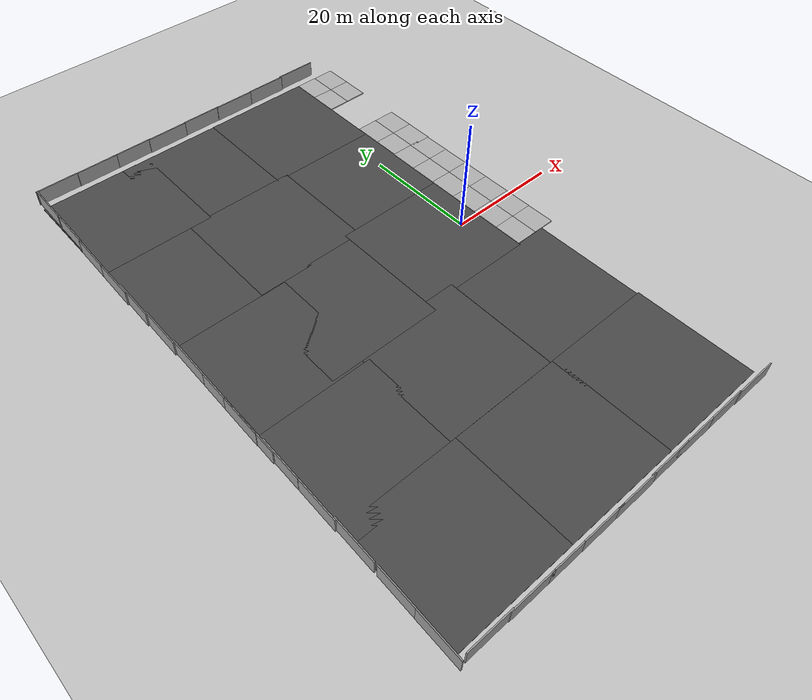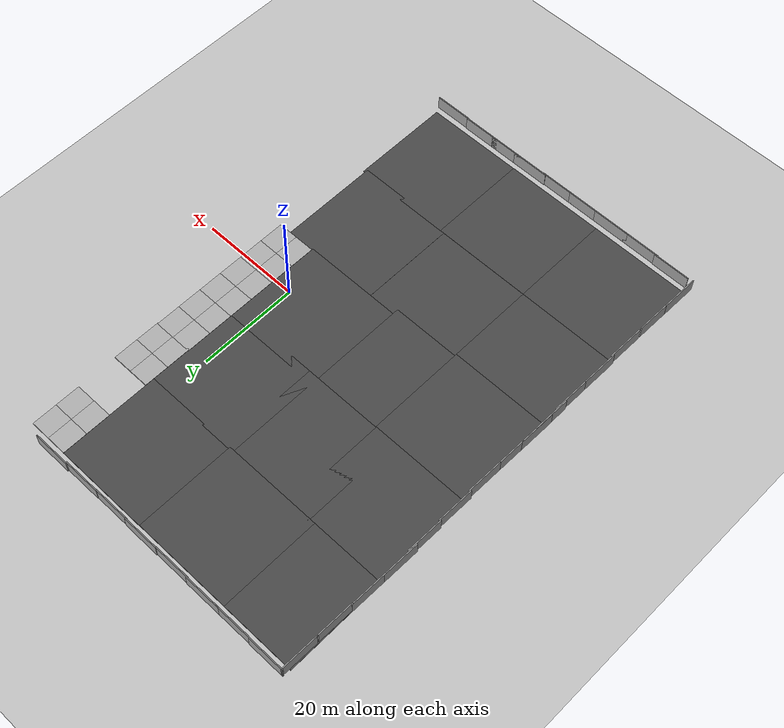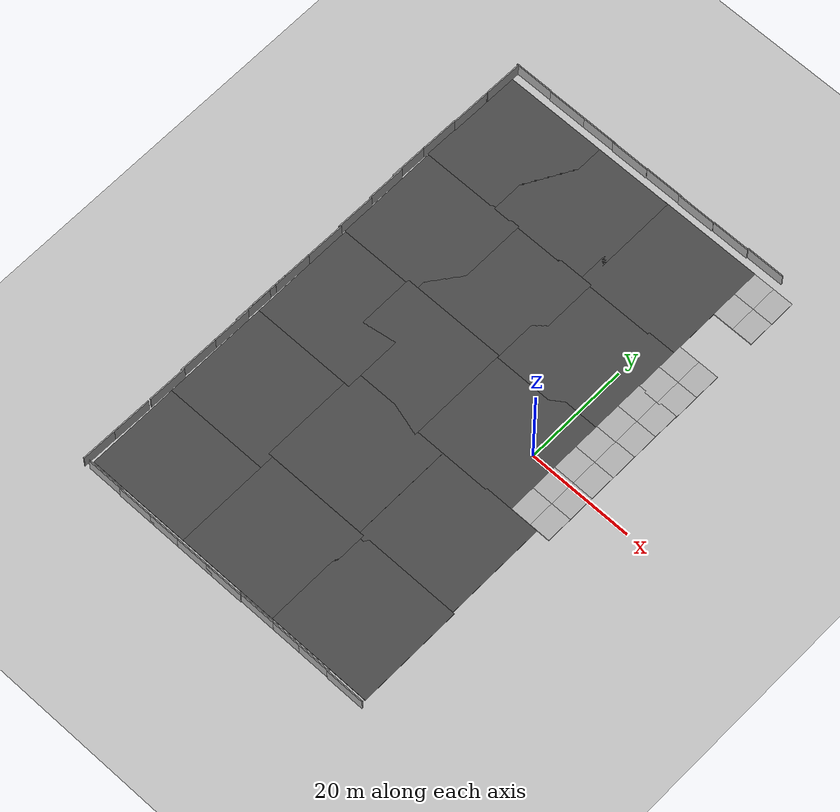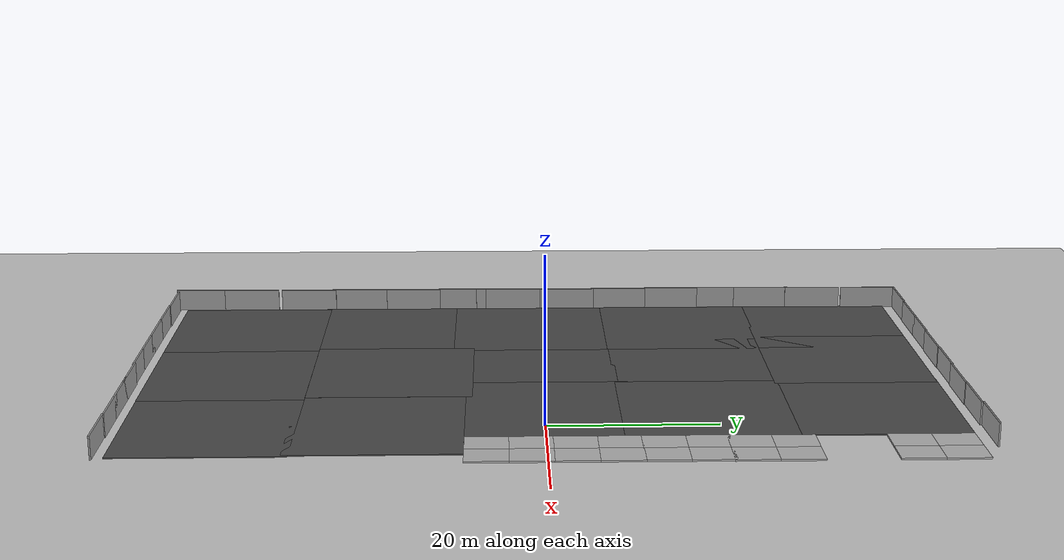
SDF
<sdf version="1.6">
 <world name="default">
  <model name="ground_plane">
   <static>1</static>
   <link name="link">
    <collision name="collision">
     <geometry><plane><normal>0 0 1</normal><size>100 100</size></plane></geometry>
     <surface><friction><ode><mu>100</mu><mu2>50</mu2></ode></friction></surface>
    </collision>
    <visual name="visual">
     <cast_shadows>0</cast_shadows>
     <geometry><plane><normal>0 0 1</normal><size>100 100</size></plane></geometry>
     <material>
      <script><uri>file://media/materials/scripts/gazebo.material</uri><name>Gazebo/Grey</name></script>
     </material>
    </visual>
   </link>
  </model>
  <model name="grey_wall">
   <static>1</static>
   <link name="link">
    <pose>0 0 1.4 0 -0 0</pose>
    <collision name="collision"><geometry><box><size>7.5 0.2 2.8</size></box></geometry></collision>
    <visual name="visual">
     <cast_shadows>0</cast_shadows>
     <geometry><box><size>7.5 0.2 2.8</size></box></geometry>
     <material>
      <script>
       <uri>model://grey_wall/materials/scripts</uri>
       <uri>model://grey_wall/materials/textures</uri>
       <name>vrc/grey_wall</name>
      </script>
     </material>
    </visual>
   </link>
   <pose>-46.1701 49.8815 0 0 -0 0</pose>
  </model>
  <model name="grey_wall_clone">
   <static>1</static>
   <link name="link">
    <pose>0 0 1.4 0 -0 0</pose>
    <collision name="collision"><geometry><box><size>7.5 0.2 2.8</size></box></geometry></collision>
    <visual name="visual">
     <cast_shadows>0</cast_shadows>
     <geometry><box><size>7.5 0.2 2.8</size></box></geometry>
     <material>
      <script>
       <uri>model://grey_wall/materials/scripts</uri>
       <uri>model://grey_wall/materials/textures</uri>
       <name>vrc/grey_wall</name>
      </script>
     </material>
    </visual>
   </link>
   <pose>-38.602 49.801 0 0 -0 0</pose>
  </model>
  <model name="grey_wall_clone_0">
   <static>1</static>
   <link name="link">
    <pose>0 0 1.4 0 -0 0</pose>
    <collision name="collision"><geometry><box><size>7.5 0.2 2.8</size></box></geometry></collision>
    <visual name="visual">
     <cast_shadows>0</cast_shadows>
     <geometry><box><size>7.5 0.2 2.8</size></box></geometry>
     <material>
      <script>
       <uri>model://grey_wall/materials/scripts</uri>
       <uri>model://grey_wall/materials/textures</uri>
       <name>vrc/grey_wall</name>
      </script>
     </material>
    </visual>
   </link>
   <pose>-31.7598 49.801 0 0 -0 0</pose>
  </model>
  <model name="grey_wall_clone_1">
   <static>1</static>
   <link name="link">
    <pose>0 0 1.4 0 -0 0</pose>
    <collision name="collision"><geometry><box><size>7.5 0.2 2.8</size></box></geometry></collision>
    <visual name="visual">
     <cast_shadows>0</cast_shadows>
     <geometry><box><size>7.5 0.2 2.8</size></box></geometry>
     <material>
      <script>
       <uri>model://grey_wall/materials/scripts</uri>
       <uri>model://grey_wall/materials/textures</uri>
       <name>vrc/grey_wall</name>
      </script>
     </material>
    </visual>
   </link>
   <pose>-24.6744 49.7204 0 0 -0 0</pose>
  </model>
  <model name="grey_wall_clone_2">
   <static>1</static>
   <link name="link">
    <pose>0 0 1.4 0 -0 0</pose>
    <collision name="collision"><geometry><box><size>7.5 0.2 2.8</size></box></geometry></collision>
    <visual name="visual">
     <cast_shadows>0</cast_shadows>
     <geometry><box><size>7.5 0.2 2.8</size></box></geometry>
     <material>
      <script>
       <uri>model://grey_wall/materials/scripts</uri>
       <uri>model://grey_wall/materials/textures</uri>
       <name>vrc/grey_wall</name>
      </script>
     </material>
    </visual>
   </link>
   <pose>-17.2675 49.801 0 0 -0 0</pose>
  </model>
  <model name="grey_wall_clone_3">
   <static>1</static>
   <link name="link">
    <pose>0 0 1.4 0 -0 0</pose>
    <collision name="collision"><geometry><box><size>7.5 0.2 2.8</size></box></geometry></collision>
    <visual name="visual">
     <cast_shadows>0</cast_shadows>
     <geometry><box><size>7.5 0.2 2.8</size></box></geometry>
     <material>
      <script>
       <uri>model://grey_wall/materials/scripts</uri>
       <uri>model://grey_wall/materials/textures</uri>
       <name>vrc/grey_wall</name>
      </script>
     </material>
    </visual>
   </link>
   <pose>-10.1824 49.7204 0 0 -0 0</pose>
  </model>
  <model name="grey_wall_clone_4">
   <static>1</static>
   <link name="link">
    <pose>0 0 1.4 0 -0 0</pose>
    <collision name="collision"><geometry><box><size>7.5 0.2 2.8</size></box></geometry></collision>
    <visual name="visual">
     <cast_shadows>0</cast_shadows>
     <geometry><box><size>7.5 0.2 2.8</size></box></geometry>
     <material>
      <script>
       <uri>model://grey_wall/materials/scripts</uri>
       <uri>model://grey_wall/materials/textures</uri>
       <name>vrc/grey_wall</name>
      </script>
     </material>
    </visual>
   </link>
   <pose>-2.85569 49.801 0 0 -0 0</pose>
  </model>
  <model name="grey_wall_clone_5">
   <static>1</static>
   <link name="link">
    <pose>0 0 1.4 0 -0 0</pose>
    <collision name="collision"><geometry><box><size>7.5 0.2 2.8</size></box></geometry></collision>
    <visual name="visual">
     <cast_shadows>0</cast_shadows>
     <geometry><box><size>7.5 0.2 2.8</size></box></geometry>
     <material>
      <script>
       <uri>model://grey_wall/materials/scripts</uri>
       <uri>model://grey_wall/materials/textures</uri>
       <name>vrc/grey_wall</name>
      </script>
     </material>
    </visual>
   </link>
   <pose>4.47068 50 0 0 -0 0</pose>
  </model>
  <model name="grey_wall_clone_12">
   <static>1</static>
   <link name="link">
    <pose>0 0 1.4 0 -0 0</pose>
    <collision name="collision"><geometry><box><size>7.5 0.2 2.8</size></box></geometry></collision>
    <visual name="visual">
     <cast_shadows>0</cast_shadows>
     <geometry><box><size>7.5 0.2 2.8</size></box></geometry>
     <material>
      <script>
       <uri>model://grey_wall/materials/scripts</uri>
       <uri>model://grey_wall/materials/textures</uri>
       <name>vrc/grey_wall</name>
      </script>
     </material>
    </visual>
   </link>
   <pose>-45.5845 -49.5987 0 0 -0 0</pose>
  </model>
  <model name="grey_wall_clone_13">
   <static>1</static>
   <link name="link">
    <pose>0 0 1.4 0 -0 0</pose>
    <collision name="collision"><geometry><box><size>7.5 0.2 2.8</size></box></geometry></collision>
    <visual name="visual">
     <cast_shadows>0</cast_shadows>
     <geometry><box><size>7.5 0.2 2.8</size></box></geometry>
     <material>
      <script>
       <uri>model://grey_wall/materials/scripts</uri>
       <uri>model://grey_wall/materials/textures</uri>
       <name>vrc/grey_wall</name>
      </script>
     </material>
    </visual>
   </link>
   <pose>-38.6647 -49.7032 0 0 -0 0</pose>
  </model>
  <model name="grey_wall_clone_14">
   <static>1</static>
   <link name="link">
    <pose>0 0 1.4 0 -0 0</pose>
    <collision name="collision"><geometry><box><size>7.5 0.2 2.8</size></box></geometry></collision>
    <visual name="visual">
     <cast_shadows>0</cast_shadows>
     <geometry><box><size>7.5 0.2 2.8</size></box></geometry>
     <material>
      <script>
       <uri>model://grey_wall/materials/scripts</uri>
       <uri>model://grey_wall/materials/textures</uri>
       <name>vrc/grey_wall</name>
      </script>
     </material>
    </visual>
   </link>
   <pose>-31.8514 -49.7032 0 0 -0 0</pose>
  </model>
  <model name="grey_wall_clone_15">
   <static>1</static>
   <link name="link">
    <pose>0 0 1.4 0 -0 0</pose>
    <collision name="collision"><geometry><box><size>7.5 0.2 2.8</size></box></geometry></collision>
    <visual name="visual">
     <cast_shadows>0</cast_shadows>
     <geometry><box><size>7.5 0.2 2.8</size></box></geometry>
     <material>
      <script>
       <uri>model://grey_wall/materials/scripts</uri>
       <uri>model://grey_wall/materials/textures</uri>
       <name>vrc/grey_wall</name>
      </script>
     </material>
    </visual>
   </link>
   <pose>-25.8942 -49.7032 0 0 -0 0</pose>
  </model>
  <model name="grey_wall_clone_16">
   <static>1</static>
   <link name="link">
    <pose>0 0 1.4 0 -0 0</pose>
    <collision name="collision"><geometry><box><size>7.5 0.2 2.8</size></box></geometry></collision>
    <visual name="visual">
     <cast_shadows>0</cast_shadows>
     <geometry><box><size>7.5 0.2 2.8</size></box></geometry>
     <material>
      <script>
       <uri>model://grey_wall/materials/scripts</uri>
       <uri>model://grey_wall/materials/textures</uri>
       <name>vrc/grey_wall</name>
      </script>
     </material>
    </visual>
   </link>
   <pose>-19.5089 -49.7032 0 0 -0 0</pose>
  </model>
  <model name="grey_wall_clone_17">
   <static>1</static>
   <link name="link">
    <pose>0 0 1.4 0 -0 0</pose>
    <collision name="collision"><geometry><box><size>7.5 0.2 2.8</size></box></geometry></collision>
    <visual name="visual">
     <cast_shadows>0</cast_shadows>
     <geometry><box><size>7.5 0.2 2.8</size></box></geometry>
     <material>
      <script>
       <uri>model://grey_wall/materials/scripts</uri>
       <uri>model://grey_wall/materials/textures</uri>
       <name>vrc/grey_wall</name>
      </script>
     </material>
    </visual>
   </link>
   <pose>-12.5891 -49.5987 0 0 -0 0</pose>
  </model>
  <model name="grey_wall_clone_18">
   <static>1</static>
   <link name="link">
    <pose>0 0 1.4 0 -0 0</pose>
    <collision name="collision"><geometry><box><size>7.5 0.2 2.8</size></box></geometry></collision>
    <visual name="visual">
     <cast_shadows>0</cast_shadows>
     <geometry><box><size>7.5 0.2 2.8</size></box></geometry>
     <material>
      <script>
       <uri>model://grey_wall/materials/scripts</uri>
       <uri>model://grey_wall/materials/textures</uri>
       <name>vrc/grey_wall</name>
      </script>
     </material>
    </visual>
   </link>
   <pose>-7.05603 -49.5987 0 0 -0 0</pose>
  </model>
  <model name="grey_wall_clone_19">
   <static>1</static>
   <link name="link">
    <pose>0 0 1.4 0 -0 0</pose>
    <collision name="collision"><geometry><box><size>7.5 0.2 2.8</size></box></geometry></collision>
    <visual name="visual">
     <cast_shadows>0</cast_shadows>
     <geometry><box><size>7.5 0.2 2.8</size></box></geometry>
     <material>
      <script>
       <uri>model://grey_wall/materials/scripts</uri>
       <uri>model://grey_wall/materials/textures</uri>
       <name>vrc/grey_wall</name>
      </script>
     </material>
    </visual>
   </link>
   <pose>-0.670774 -49.5987 0 0 -0 0</pose>
  </model>
  <model name="grey_wall_clone_20">
   <static>1</static>
   <link name="link">
    <pose>0 0 1.4 0 -0 0</pose>
    <collision name="collision"><geometry><box><size>7.5 0.2 2.8</size></box></geometry></collision>
    <visual name="visual">
     <cast_shadows>0</cast_shadows>
     <geometry><box><size>7.5 0.2 2.8</size></box></geometry>
     <material>
      <script>
       <uri>model://grey_wall/materials/scripts</uri>
       <uri>model://grey_wall/materials/textures</uri>
       <name>vrc/grey_wall</name>
      </script>
     </material>
    </visual>
   </link>
   <pose>6.56856 -49.7032 0 0 -0 0</pose>
  </model>
  <model name="grey_wall_clone_27">
   <static>1</static>
   <link name="link">
    <pose>0 0 1.4 0 -0 0</pose>
    <collision name="collision"><geometry><box><size>7.5 0.2 2.8</size></box></geometry></collision>
    <visual name="visual">
     <cast_shadows>0</cast_shadows>
     <geometry><box><size>7.5 0.2 2.8</size></box></geometry>
     <material>
      <script>
       <uri>model://grey_wall/materials/scripts</uri>
       <uri>model://grey_wall/materials/textures</uri>
       <name>vrc/grey_wall</name>
      </script>
     </material>
    </visual>
   </link>
   <pose>-49.7193 46.2533 0 0 0 -1.5859</pose>
  </model>
  <model name="grey_wall_clone_27_clone">
   <static>1</static>
   <link name="link">
    <pose>0 0 1.4 0 -0 0</pose>
    <collision name="collision"><geometry><box><size>7.5 0.2 2.8</size></box></geometry></collision>
    <visual name="visual">
     <cast_shadows>0</cast_shadows>
     <geometry><box><size>7.5 0.2 2.8</size></box></geometry>
     <material>
      <script>
       <uri>model://grey_wall/materials/scripts</uri>
       <uri>model://grey_wall/materials/textures</uri>
       <name>vrc/grey_wall</name>
      </script>
     </material>
    </visual>
   </link>
   <pose>-49.815 38.4554 0 0 0 -1.5859</pose>
  </model>
  <model name="grey_wall_clone_27_clone_0">
   <static>1</static>
   <link name="link">
    <pose>0 0 1.4 0 -0 0</pose>
    <collision name="collision"><geometry><box><size>7.5 0.2 2.8</size></box></geometry></collision>
    <visual name="visual">
     <cast_shadows>0</cast_shadows>
     <geometry><box><size>7.5 0.2 2.8</size></box></geometry>
     <material>
      <script>
       <uri>model://grey_wall/materials/scripts</uri>
       <uri>model://grey_wall/materials/textures</uri>
       <name>vrc/grey_wall</name>
      </script>
     </material>
    </visual>
   </link>
   <pose>-50.0316 31.29 0 0 0 -1.5859</pose>
  </model>
  <model name="grey_wall_clone_27_clone_1">
   <static>1</static>
   <link name="link">
    <pose>0 0 1.4 0 -0 0</pose>
    <collision name="collision"><geometry><box><size>7.5 0.2 2.8</size></box></geometry></collision>
    <visual name="visual">
     <cast_shadows>0</cast_shadows>
     <geometry><box><size>7.5 0.2 2.8</size></box></geometry>
     <material>
      <script>
       <uri>model://grey_wall/materials/scripts</uri>
       <uri>model://grey_wall/materials/textures</uri>
       <name>vrc/grey_wall</name>
      </script>
     </material>
    </visual>
   </link>
   <pose>-50.152 24.2369 0 0 0 -1.5859</pose>
  </model>
  <model name="grey_wall_clone_27_clone_2">
   <static>1</static>
   <link name="link">
    <pose>0 0 1.4 0 -0 0</pose>
    <collision name="collision"><geometry><box><size>7.5 0.2 2.8</size></box></geometry></collision>
    <visual name="visual">
     <cast_shadows>0</cast_shadows>
     <geometry><box><size>7.5 0.2 2.8</size></box></geometry>
     <material>
      <script>
       <uri>model://grey_wall/materials/scripts</uri>
       <uri>model://grey_wall/materials/textures</uri>
       <name>vrc/grey_wall</name>
      </script>
     </material>
    </visual>
   </link>
   <pose>-50.0316 18.6161 0 0 0 -1.5859</pose>
  </model>
  <model name="grey_wall_clone_27_clone_3">
   <static>1</static>
   <link name="link">
    <pose>0 0 1.4 0 -0 0</pose>
    <collision name="collision"><geometry><box><size>7.5 0.2 2.8</size></box></geometry></collision>
    <visual name="visual">
     <cast_shadows>0</cast_shadows>
     <geometry><box><size>7.5 0.2 2.8</size></box></geometry>
     <material>
      <script>
       <uri>model://grey_wall/materials/scripts</uri>
       <uri>model://grey_wall/materials/textures</uri>
       <name>vrc/grey_wall</name>
      </script>
     </material>
    </visual>
   </link>
   <pose>-49.9353 11.3383 0 0 0 -1.5859</pose>
  </model>
  <model name="grey_wall_clone_27_clone_4">
   <static>1</static>
   <link name="link">
    <pose>0 0 1.4 0 -0 0</pose>
    <collision name="collision"><geometry><box><size>7.5 0.2 2.8</size></box></geometry></collision>
    <visual name="visual">
     <cast_shadows>0</cast_shadows>
     <geometry><box><size>7.5 0.2 2.8</size></box></geometry>
     <material>
      <script>
       <uri>model://grey_wall/materials/scripts</uri>
       <uri>model://grey_wall/materials/textures</uri>
       <name>vrc/grey_wall</name>
      </script>
     </material>
    </visual>
   </link>
   <pose>-49.815 4.17291 0 0 0 -1.5859</pose>
  </model>
  <model name="grey_wall_clone_27_clone_5">
   <static>1</static>
   <link name="link">
    <pose>0 0 1.4 0 -0 0</pose>
    <collision name="collision"><geometry><box><size>7.5 0.2 2.8</size></box></geometry></collision>
    <visual name="visual">
     <cast_shadows>0</cast_shadows>
     <geometry><box><size>7.5 0.2 2.8</size></box></geometry>
     <material>
      <script>
       <uri>model://grey_wall/materials/scripts</uri>
       <uri>model://grey_wall/materials/textures</uri>
       <name>vrc/grey_wall</name>
      </script>
     </material>
    </visual>
   </link>
   <pose>-49.9353 -3.32151 0 0 0 -1.5859</pose>
  </model>
  <model name="grey_wall_clone_27_clone_6">
   <static>1</static>
   <link name="link">
    <pose>0 0 1.4 0 -0 0</pose>
    <collision name="collision"><geometry><box><size>7.5 0.2 2.8</size></box></geometry></collision>
    <visual name="visual">
     <cast_shadows>0</cast_shadows>
     <geometry><box><size>7.5 0.2 2.8</size></box></geometry>
     <material>
      <script>
       <uri>model://grey_wall/materials/scripts</uri>
       <uri>model://grey_wall/materials/textures</uri>
       <name>vrc/grey_wall</name>
      </script>
     </material>
    </visual>
   </link>
   <pose>-50.0316 -8.50501 0 0 0 -1.5859</pose>
  </model>
  <model name="grey_wall_clone_27_clone_7">
   <static>1</static>
   <link name="link">
    <pose>0 0 1.4 0 -0 0</pose>
    <collision name="collision"><geometry><box><size>7.5 0.2 2.8</size></box></geometry></collision>
    <visual name="visual">
     <cast_shadows>0</cast_shadows>
     <geometry><box><size>7.5 0.2 2.8</size></box></geometry>
     <material>
      <script>
       <uri>model://grey_wall/materials/scripts</uri>
       <uri>model://grey_wall/materials/textures</uri>
       <name>vrc/grey_wall</name>
      </script>
     </material>
    </visual>
   </link>
   <pose>-50.0316 -12.1439 0 0 0 -1.5859</pose>
  </model>
  <model name="grey_wall_clone_27_clone_8">
   <static>1</static>
   <link name="link">
    <pose>0 0 1.4 0 -0 0</pose>
    <collision name="collision"><geometry><box><size>7.5 0.2 2.8</size></box></geometry></collision>
    <visual name="visual">
     <cast_shadows>0</cast_shadows>
     <geometry><box><size>7.5 0.2 2.8</size></box></geometry>
     <material>
      <script>
       <uri>model://grey_wall/materials/scripts</uri>
       <uri>model://grey_wall/materials/textures</uri>
       <name>vrc/grey_wall</name>
      </script>
     </material>
    </visual>
   </link>
   <pose>-49.9353 -17.2151 0 0 0 -1.5859</pose>
  </model>
  <model name="grey_wall_clone_27_clone_9">
   <static>1</static>
   <link name="link">
    <pose>0 0 1.4 0 -0 0</pose>
    <collision name="collision"><geometry><box><size>7.5 0.2 2.8</size></box></geometry></collision>
    <visual name="visual">
     <cast_shadows>0</cast_shadows>
     <geometry><box><size>7.5 0.2 2.8</size></box></geometry>
     <material>
      <script>
       <uri>model://grey_wall/materials/scripts</uri>
       <uri>model://grey_wall/materials/textures</uri>
       <name>vrc/grey_wall</name>
      </script>
     </material>
    </visual>
   </link>
   <pose>-50.0316 -24.6011 0 0 0 -1.5859</pose>
  </model>
  <model name="grey_wall_clone_27_clone_10">
   <static>1</static>
   <link name="link">
    <pose>0 0 1.4 0 -0 0</pose>
    <collision name="collision"><geometry><box><size>7.5 0.2 2.8</size></box></geometry></collision>
    <visual name="visual">
     <cast_shadows>0</cast_shadows>
     <geometry><box><size>7.5 0.2 2.8</size></box></geometry>
     <material>
      <script>
       <uri>model://grey_wall/materials/scripts</uri>
       <uri>model://grey_wall/materials/textures</uri>
       <name>vrc/grey_wall</name>
      </script>
     </material>
    </visual>
   </link>
   <pose>-49.9353 -31.6542 0 0 0 -1.5859</pose>
  </model>
  <model name="grey_wall_clone_27_clone_11">
   <static>1</static>
   <link name="link">
    <pose>0 0 1.4 0 -0 0</pose>
    <collision name="collision"><geometry><box><size>7.5 0.2 2.8</size></box></geometry></collision>
    <visual name="visual">
     <cast_shadows>0</cast_shadows>
     <geometry><box><size>7.5 0.2 2.8</size></box></geometry>
     <material>
      <script>
       <uri>model://grey_wall/materials/scripts</uri>
       <uri>model://grey_wall/materials/textures</uri>
       <name>vrc/grey_wall</name>
      </script>
     </material>
    </visual>
   </link>
   <pose>-50.0316 -39.598 0 0 0 -1.5859</pose>
  </model>
  <model name="grey_wall_clone_27_clone_12">
   <static>1</static>
   <link name="link">
    <pose>0 0 1.4 0 -0 0</pose>
    <collision name="collision"><geometry><box><size>7.5 0.2 2.8</size></box></geometry></collision>
    <visual name="visual">
     <cast_shadows>0</cast_shadows>
     <geometry><box><size>7.5 0.2 2.8</size></box></geometry>
     <material>
      <script>
       <uri>model://grey_wall/materials/scripts</uri>
       <uri>model://grey_wall/materials/textures</uri>
       <name>vrc/grey_wall</name>
      </script>
     </material>
    </visual>
   </link>
   <pose>-50.152 -46.2098 0 0 0 -1.5859</pose>
  </model>
  <model name="asphalt_plane_clone">
   <static>1</static>
   <link name="link">
    <collision name="collision"><geometry><box><size>20 20 0.1</size></box></geometry></collision>
    <visual name="visual">
     <cast_shadows>0</cast_shadows>
     <geometry><box><size>20 20 0.1</size></box></geometry>
     <material>
      <script>
       <uri>model://asphalt_plane/materials/scripts</uri>
       <uri>model://asphalt_plane/materials/textures</uri>
       <name>vrc/asphalt</name>
      </script>
     </material>
    </visual>
   </link>
   <pose>-6.06602 38.4755 0 0 -0 0</pose>
  </model>
  <model name="asphalt_plane_clone_clone">
   <static>1</static>
   <link name="link">
    <collision name="collision"><geometry><box><size>20 20 0.1</size></box></geometry></collision>
    <visual name="visual">
     <cast_shadows>0</cast_shadows>
     <geometry><box><size>20 20 0.1</size></box></geometry>
     <material>
      <script>
       <uri>model://asphalt_plane/materials/scripts</uri>
       <uri>model://asphalt_plane/materials/textures</uri>
       <name>vrc/asphalt</name>
      </script>
     </material>
    </visual>
   </link>
   <pose>-25.029 38.4314 0 0 -0 0</pose>
  </model>
  <model name="asphalt_plane_clone_clone_0">
   <static>1</static>
   <link name="link">
    <collision name="collision"><geometry><box><size>20 20 0.1</size></box></geometry></collision>
    <visual name="visual">
     <cast_shadows>0</cast_shadows>
     <geometry><box><size>20 20 0.1</size></box></geometry>
     <material>
      <script>
       <uri>model://asphalt_plane/materials/scripts</uri>
       <uri>model://asphalt_plane/materials/textures</uri>
       <name>vrc/asphalt</name>
      </script>
     </material>
    </visual>
   </link>
   <pose>-40.0484 38.4332 0 0 -0 0</pose>
  </model>
  <model name="asphalt_plane_clone_clone_1">
   <static>1</static>
   <link name="link">
    <collision name="collision"><geometry><box><size>20 20 0.1</size></box></geometry></collision>
    <visual name="visual">
     <cast_shadows>0</cast_shadows>
     <geometry><box><size>20 20 0.1</size></box></geometry>
     <material>
      <script>
       <uri>model://asphalt_plane/materials/scripts</uri>
       <uri>model://asphalt_plane/materials/textures</uri>
       <name>vrc/asphalt</name>
      </script>
     </material>
    </visual>
   </link>
   <pose>-6.09725 0.452173 0 0 -0 0</pose>
  </model>
  <model name="asphalt_plane_clone_clone_2">
   <static>1</static>
   <link name="link">
    <collision name="collision"><geometry><box><size>20 20 0.1</size></box></geometry></collision>
    <visual name="visual">
     <cast_shadows>0</cast_shadows>
     <geometry><box><size>20 20 0.1</size></box></geometry>
     <material>
      <script>
       <uri>model://asphalt_plane/materials/scripts</uri>
       <uri>model://asphalt_plane/materials/textures</uri>
       <name>vrc/asphalt</name>
      </script>
     </material>
    </visual>
   </link>
   <pose>-6.0256 18.8451 0 0 -0 0</pose>
  </model>
  <model name="asphalt_plane_clone_clone_3">
   <static>1</static>
   <link name="link">
    <collision name="collision"><geometry><box><size>20 20 0.1</size></box></geometry></collision>
    <visual name="visual">
     <cast_shadows>0</cast_shadows>
     <geometry><box><size>20 20 0.1</size></box></geometry>
     <material>
      <script>
       <uri>model://asphalt_plane/materials/scripts</uri>
       <uri>model://asphalt_plane/materials/textures</uri>
       <name>vrc/asphalt</name>
      </script>
     </material>
    </visual>
   </link>
   <pose>-23.9914 18.848 0 0 -0 0</pose>
  </model>
  <model name="asphalt_plane_clone_clone_4">
   <static>1</static>
   <link name="link">
    <collision name="collision"><geometry><box><size>20 20 0.1</size></box></geometry></collision>
    <visual name="visual">
     <cast_shadows>0</cast_shadows>
     <geometry><box><size>20 20 0.1</size></box></geometry>
     <material>
      <script>
       <uri>model://asphalt_plane/materials/scripts</uri>
       <uri>model://asphalt_plane/materials/textures</uri>
       <name>vrc/asphalt</name>
      </script>
     </material>
    </visual>
   </link>
   <pose>-39.8056 18.7324 0 0 -0 0</pose>
  </model>
  <model name="asphalt_plane_clone_clone_5">
   <static>1</static>
   <link name="link">
    <collision name="collision"><geometry><box><size>20 20 0.1</size></box></geometry></collision>
    <visual name="visual">
     <cast_shadows>0</cast_shadows>
     <geometry><box><size>20 20 0.1</size></box></geometry>
     <material>
      <script>
       <uri>model://asphalt_plane/materials/scripts</uri>
       <uri>model://asphalt_plane/materials/textures</uri>
       <name>vrc/asphalt</name>
      </script>
     </material>
    </visual>
   </link>
   <pose>-39.6898 -1.25437 0 0 -0 0</pose>
  </model>
  <model name="asphalt_plane_clone_clone_6">
   <static>1</static>
   <link name="link">
    <collision name="collision"><geometry><box><size>20 20 0.1</size></box></geometry></collision>
    <visual name="visual">
     <cast_shadows>0</cast_shadows>
     <geometry><box><size>20 20 0.1</size></box></geometry>
     <material>
      <script>
       <uri>model://asphalt_plane/materials/scripts</uri>
       <uri>model://asphalt_plane/materials/textures</uri>
       <name>vrc/asphalt</name>
      </script>
     </material>
    </visual>
   </link>
   <pose>-26.0836 -0.718716 0 0 -0 0</pose>
  </model>
  <model name="asphalt_plane_clone_clone_7">
   <static>1</static>
   <link name="link">
    <collision name="collision"><geometry><box><size>20 20 0.1</size></box></geometry></collision>
    <visual name="visual">
     <cast_shadows>0</cast_shadows>
     <geometry><box><size>20 20 0.1</size></box></geometry>
     <material>
      <script>
       <uri>model://asphalt_plane/materials/scripts</uri>
       <uri>model://asphalt_plane/materials/textures</uri>
       <name>vrc/asphalt</name>
      </script>
     </material>
    </visual>
   </link>
   <pose>-39.6936 -21.1224 0 0 -0 0</pose>
  </model>
  <model name="asphalt_plane_clone_clone_8">
   <static>1</static>
   <link name="link">
    <collision name="collision"><geometry><box><size>20 20 0.1</size></box></geometry></collision>
    <visual name="visual">
     <cast_shadows>0</cast_shadows>
     <geometry><box><size>20 20 0.1</size></box></geometry>
     <material>
      <script>
       <uri>model://asphalt_plane/materials/scripts</uri>
       <uri>model://asphalt_plane/materials/textures</uri>
       <name>vrc/asphalt</name>
      </script>
     </material>
    </visual>
   </link>
   <pose>-39.6709 -38.5159 0 0 -0 0</pose>
  </model>
  <model name="asphalt_plane_clone_clone_9">
   <static>1</static>
   <link name="link">
    <collision name="collision"><geometry><box><size>20 20 0.1</size></box></geometry></collision>
    <visual name="visual">
     <cast_shadows>0</cast_shadows>
     <geometry><box><size>20 20 0.1</size></box></geometry>
     <material>
      <script>
       <uri>model://asphalt_plane/materials/scripts</uri>
       <uri>model://asphalt_plane/materials/textures</uri>
       <name>vrc/asphalt</name>
      </script>
     </material>
    </visual>
   </link>
   <pose>-19.7984 -38.5079 0 0 -0 0</pose>
  </model>
  <model name="asphalt_plane_clone_clone_10">
   <static>1</static>
   <link name="link">
    <collision name="collision"><geometry><box><size>20 20 0.1</size></box></geometry></collision>
    <visual name="visual">
     <cast_shadows>0</cast_shadows>
     <geometry><box><size>20 20 0.1</size></box></geometry>
     <material>
      <script>
       <uri>model://asphalt_plane/materials/scripts</uri>
       <uri>model://asphalt_plane/materials/textures</uri>
       <name>vrc/asphalt</name>
      </script>
     </material>
    </visual>
   </link>
   <pose>-20.6391 -18.4991 0 0 -0 0</pose>
  </model>
  <model name="asphalt_plane_clone_clone_11">
   <static>1</static>
   <link name="link">
    <collision name="collision"><geometry><box><size>20 20 0.1</size></box></geometry></collision>
    <visual name="visual">
     <cast_shadows>0</cast_shadows>
     <geometry><box><size>20 20 0.1</size></box></geometry>
     <material>
      <script>
       <uri>model://asphalt_plane/materials/scripts</uri>
       <uri>model://asphalt_plane/materials/textures</uri>
       <name>vrc/asphalt</name>
      </script>
     </material>
    </visual>
   </link>
   <pose>-0.630927 -19.2644 0 0 -0 0</pose>
  </model>
  <model name="asphalt_plane_clone_clone_16">
   <static>1</static>
   <link name="link">
    <collision name="collision"><geometry><box><size>20 20 0.1</size></box></geometry></collision>
    <visual name="visual">
     <cast_shadows>0</cast_shadows>
     <geometry><box><size>20 20 0.1</size></box></geometry>
     <material>
      <script>
       <uri>model://asphalt_plane/materials/scripts</uri>
       <uri>model://asphalt_plane/materials/textures</uri>
       <name>vrc/asphalt</name>
      </script>
     </material>
    </visual>
   </link>
   <pose>-0.297876 -38.4705 0 0 -0 0</pose>
  </model>
  <model name="mud_box_clone_4_clone_1">
   <static>1</static>
   <link name="link">
    <collision name="collision"><geometry><box><size>8 10 0.2</size></box></geometry></collision>
    <visual name="visual_1">
     <pose>-2 2.5 0 0 -0 0</pose>
     <cast_shadows>0</cast_shadows>
     <geometry><box><size>4 5 0.2</size></box></geometry>
     <material>
      <script>
       <uri>model://mud_box/materials/scripts</uri>
       <uri>model://mud_box/materials/textures</uri>
       <name>vrc/mud</name>
      </script>
     </material>
    </visual>
    <visual name="visual_2">
     <pose>2 2.5 0 0 -0 0</pose>
     <cast_shadows>0</cast_shadows>
     <geometry><box><size>4 5 0.2</size></box></geometry>
     <material>
      <script>
       <uri>model://mud_box/materials/scripts</uri>
       <uri>model://mud_box/materials/textures</uri>
       <name>vrc/mud</name>
      </script>
     </material>
    </visual>
    <visual name="visual_3">
     <pose>2 -2.5 0 0 -0 0</pose>
     <cast_shadows>0</cast_shadows>
     <geometry><box><size>4 5 0.2</size></box></geometry>
     <material>
      <script>
       <uri>model://mud_box/materials/scripts</uri>
       <uri>model://mud_box/materials/textures</uri>
       <name>vrc/mud</name>
      </script>
     </material>
    </visual>
    <visual name="visual_4">
     <pose>-2 -2.5 0 0 -0 0</pose>
     <cast_shadows>0</cast_shadows>
     <geometry><box><size>4 5 0.2</size></box></geometry>
     <material>
      <script>
       <uri>model://mud_box/materials/scripts</uri>
       <uri>model://mud_box/materials/textures</uri>
       <name>vrc/mud</name>
      </script>
     </material>
    </visual>
   </link>
   <pose>7.83865 15.64 0 0 -0 0</pose>
  </model>
  <model name="mud_box_clone_4_clone_5">
   <static>1</static>
   <link name="link">
    <collision name="collision"><geometry><box><size>8 10 0.2</size></box></geometry></collision>
    <visual name="visual_1">
     <pose>-2 2.5 0 0 -0 0</pose>
     <cast_shadows>0</cast_shadows>
     <geometry><box><size>4 5 0.2</size></box></geometry>
     <material>
      <script>
       <uri>model://mud_box/materials/scripts</uri>
       <uri>model://mud_box/materials/textures</uri>
       <name>vrc/mud</name>
      </script>
     </material>
    </visual>
    <visual name="visual_2">
     <pose>2 2.5 0 0 -0 0</pose>
     <cast_shadows>0</cast_shadows>
     <geometry><box><size>4 5 0.2</size></box></geometry>
     <material>
      <script>
       <uri>model://mud_box/materials/scripts</uri>
       <uri>model://mud_box/materials/textures</uri>
       <name>vrc/mud</name>
      </script>
     </material>
    </visual>
    <visual name="visual_3">
     <pose>2 -2.5 0 0 -0 0</pose>
     <cast_shadows>0</cast_shadows>
     <geometry><box><size>4 5 0.2</size></box></geometry>
     <material>
      <script>
       <uri>model://mud_box/materials/scripts</uri>
       <uri>model://mud_box/materials/textures</uri>
       <name>vrc/mud</name>
      </script>
     </material>
    </visual>
    <visual name="visual_4">
     <pose>-2 -2.5 0 0 -0 0</pose>
     <cast_shadows>0</cast_shadows>
     <geometry><box><size>4 5 0.2</size></box></geometry>
     <material>
      <script>
       <uri>model://mud_box/materials/scripts</uri>
       <uri>model://mud_box/materials/textures</uri>
       <name>vrc/mud</name>
      </script>
     </material>
    </visual>
   </link>
   <pose>7.93901 25.313 0 0 -0 0</pose>
  </model>
  <model name="mud_box_clone_4_clone_7">
   <static>1</static>
   <link name="link">
    <collision name="collision"><geometry><box><size>8 10 0.2</size></box></geometry></collision>
    <visual name="visual_1">
     <pose>-2 2.5 0 0 -0 0</pose>
     <cast_shadows>0</cast_shadows>
     <geometry><box><size>4 5 0.2</size></box></geometry>
     <material>
      <script>
       <uri>model://mud_box/materials/scripts</uri>
       <uri>model://mud_box/materials/textures</uri>
       <name>vrc/mud</name>
      </script>
     </material>
    </visual>
    <visual name="visual_2">
     <pose>2 2.5 0 0 -0 0</pose>
     <cast_shadows>0</cast_shadows>
     <geometry><box><size>4 5 0.2</size></box></geometry>
     <material>
      <script>
       <uri>model://mud_box/materials/scripts</uri>
       <uri>model://mud_box/materials/textures</uri>
       <name>vrc/mud</name>
      </script>
     </material>
    </visual>
    <visual name="visual_3">
     <pose>2 -2.5 0 0 -0 0</pose>
     <cast_shadows>0</cast_shadows>
     <geometry><box><size>4 5 0.2</size></box></geometry>
     <material>
      <script>
       <uri>model://mud_box/materials/scripts</uri>
       <uri>model://mud_box/materials/textures</uri>
       <name>vrc/mud</name>
      </script>
     </material>
    </visual>
    <visual name="visual_4">
     <pose>-2 -2.5 0 0 -0 0</pose>
     <cast_shadows>0</cast_shadows>
     <geometry><box><size>4 5 0.2</size></box></geometry>
     <material>
      <script>
       <uri>model://mud_box/materials/scripts</uri>
       <uri>model://mud_box/materials/textures</uri>
       <name>vrc/mud</name>
      </script>
     </material>
    </visual>
   </link>
   <pose>7.89505 43.4296 0 0 -0 0</pose>
  </model>
  <model name="mud_box_clone_4_clone_2_clone">
   <static>1</static>
   <link name="link">
    <collision name="collision"><geometry><box><size>8 10 0.2</size></box></geometry></collision>
    <visual name="visual_1">
     <pose>-2 2.5 0 0 -0 0</pose>
     <cast_shadows>0</cast_shadows>
     <geometry><box><size>4 5 0.2</size></box></geometry>
     <material>
      <script>
       <uri>model://mud_box/materials/scripts</uri>
       <uri>model://mud_box/materials/textures</uri>
       <name>vrc/mud</name>
      </script>
     </material>
    </visual>
    <visual name="visual_2">
     <pose>2 2.5 0 0 -0 0</pose>
     <cast_shadows>0</cast_shadows>
     <geometry><box><size>4 5 0.2</size></box></geometry>
     <material>
      <script>
       <uri>model://mud_box/materials/scripts</uri>
       <uri>model://mud_box/materials/textures</uri>
       <name>vrc/mud</name>
      </script>
     </material>
    </visual>
    <visual name="visual_3">
     <pose>2 -2.5 0 0 -0 0</pose>
     <cast_shadows>0</cast_shadows>
     <geometry><box><size>4 5 0.2</size></box></geometry>
     <material>
      <script>
       <uri>model://mud_box/materials/scripts</uri>
       <uri>model://mud_box/materials/textures</uri>
       <name>vrc/mud</name>
      </script>
     </material>
    </visual>
    <visual name="visual_4">
     <pose>-2 -2.5 0 0 -0 0</pose>
     <cast_shadows>0</cast_shadows>
     <geometry><box><size>4 5 0.2</size></box></geometry>
     <material>
      <script>
       <uri>model://mud_box/materials/scripts</uri>
       <uri>model://mud_box/materials/textures</uri>
       <name>vrc/mud</name>
      </script>
     </material>
    </visual>
   </link>
   <pose>7.84034 -4.24508 0 0 -0 0</pose>
  </model>
  <model name="mud_box_clone_4_clone_2_clone_0">
   <static>1</static>
   <link name="link">
    <collision name="collision"><geometry><box><size>8 10 0.2</size></box></geometry></collision>
    <visual name="visual_1">
     <pose>-2 2.5 0 0 -0 0</pose>
     <cast_shadows>0</cast_shadows>
     <geometry><box><size>4 5 0.2</size></box></geometry>
     <material>
      <script>
       <uri>model://mud_box/materials/scripts</uri>
       <uri>model://mud_box/materials/textures</uri>
       <name>vrc/mud</name>
      </script>
     </material>
    </visual>
    <visual name="visual_2">
     <pose>2 2.5 0 0 -0 0</pose>
     <cast_shadows>0</cast_shadows>
     <geometry><box><size>4 5 0.2</size></box></geometry>
     <material>
      <script>
       <uri>model://mud_box/materials/scripts</uri>
       <uri>model://mud_box/materials/textures</uri>
       <name>vrc/mud</name>
      </script>
     </material>
    </visual>
    <visual name="visual_3">
     <pose>2 -2.5 0 0 -0 0</pose>
     <cast_shadows>0</cast_shadows>
     <geometry><box><size>4 5 0.2</size></box></geometry>
     <material>
      <script>
       <uri>model://mud_box/materials/scripts</uri>
       <uri>model://mud_box/materials/textures</uri>
       <name>vrc/mud</name>
      </script>
     </material>
    </visual>
    <visual name="visual_4">
     <pose>-2 -2.5 0 0 -0 0</pose>
     <cast_shadows>0</cast_shadows>
     <geometry><box><size>4 5 0.2</size></box></geometry>
     <material>
      <script>
       <uri>model://mud_box/materials/scripts</uri>
       <uri>model://mud_box/materials/textures</uri>
       <name>vrc/mud</name>
      </script>
     </material>
    </visual>
   </link>
   <pose>7.84308 5.72924 0 0 -0 0</pose>
  </model>
 </world>
</sdf>
